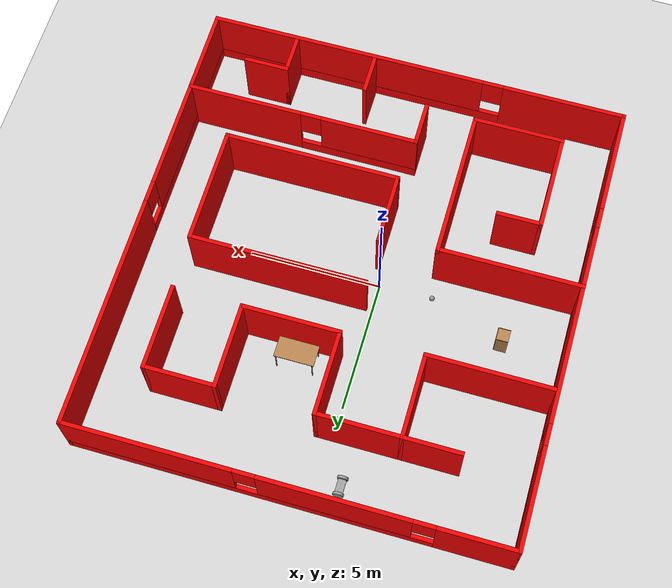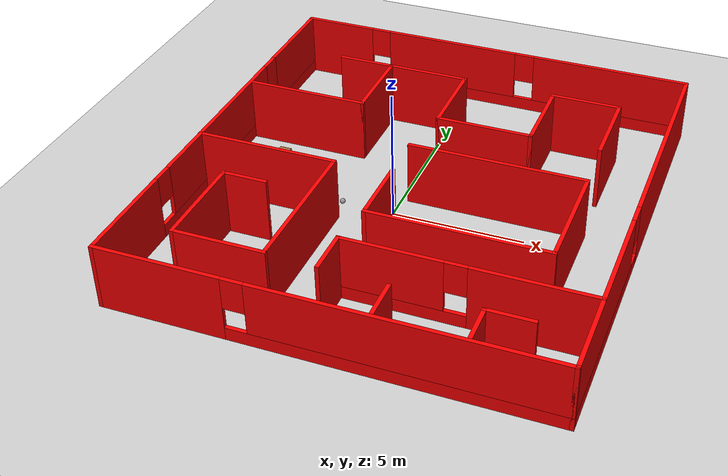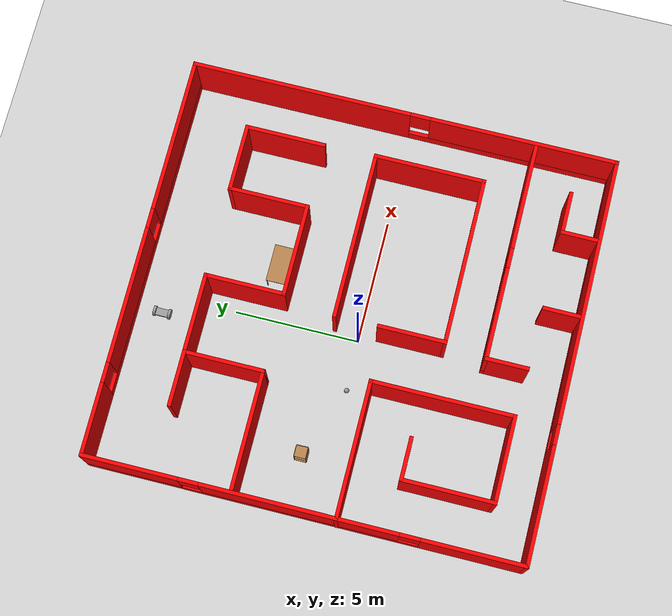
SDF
<sdf version="1.6">
 <world name="default">
  <plugin name="hello" filename="libwelcome.so"/>
  <light name="sun" type="directional">
   <pose>0 0 10 0 -0 0</pose>
   <diffuse>0.8 0.8 0.8 1</diffuse>
   <specular>0.2 0.2 0.2 1</specular>
   <attenuation>
    <range>1000</range>
    <constant>0.9</constant>
    <linear>0.01</linear>
    <quadratic>0.001</quadratic>
   </attenuation>
   <direction>-0.5 0.1 -0.9</direction>
  </light>
  <model name="ground_plane">
   <static>1</static>
   <link name="link">
    <collision name="collision">
     <geometry><plane><normal>0 0 1</normal><size>100 100</size></plane></geometry>
     <surface><friction><ode><mu>100</mu><mu2>50</mu2></ode></friction></surface>
    </collision>
    <visual name="visual">
     <cast_shadows>0</cast_shadows>
     <geometry><plane><normal>0 0 1</normal><size>100 100</size></plane></geometry>
     <material>
      <script><uri>file://media/materials/scripts/gazebo.material</uri><name>Gazebo/Grey</name></script>
     </material>
    </visual>
   </link>
  </model>
  <gravity>0 0 -9.8</gravity>
  <magnetic_field>6e-06 2.3e-05 -4.2e-05</magnetic_field>
  <atmosphere type="adiabatic"/>
  <physics name="default_physics" default="0" type="ode">
   <max_step_size>0.001</max_step_size>
   <real_time_factor>1</real_time_factor>
   <real_time_update_rate>1000</real_time_update_rate>
  </physics>
  <scene><ambient>0.4 0.4 0.4 1</ambient><background>0.7 0.7 0.7 1</background><shadows>1</shadows></scene>
  <spherical_coordinates>
   <surface_model>EARTH_WGS84</surface_model>
   <latitude_deg>0</latitude_deg>
   <longitude_deg>0</longitude_deg>
   <elevation>0</elevation>
   <heading_deg>0</heading_deg>
  </spherical_coordinates>
  <model name="Building">
   <pose>0.83335 0.33539 0 0 -0 0</pose>
   <link name="Wall_10">
    <pose>0.002796 -8.55 0 0 -0 0</pose>
    <visual name="Wall_10_Visual_0">
     <pose>-5.76226 0 1.25 0 -0 0</pose>
     <geometry><box><size>4.72547 0.15 2.5</size></box></geometry>
     <material>
      <script><uri>file://media/materials/scripts/gazebo.material</uri><name>Gazebo/Grey</name></script>
      <ambient>1 0 0 1</ambient>
     </material>
     <meta><layer>0</layer></meta>
    </visual>
    <collision name="Wall_10_Collision_0">
     <geometry><box><size>4.72547 0.15 2.5</size></box></geometry>
     <pose>-5.76226 0 1.25 0 -0 0</pose>
    </collision>
    <visual name="Wall_10_Visual_1">
     <pose>2.36274 0 0.25 0 -0 0</pose>
     <geometry><box><size>11.5245 0.15 0.5</size></box></geometry>
     <material>
      <script><uri>file://media/materials/scripts/gazebo.material</uri><name>Gazebo/Grey</name></script>
      <ambient>1 0 0 1</ambient>
     </material>
     <meta><layer>0</layer></meta>
    </visual>
    <collision name="Wall_10_Collision_1">
     <geometry><box><size>11.5245 0.15 0.5</size></box></geometry>
     <pose>2.36274 0 0.25 0 -0 0</pose>
    </collision>
    <visual name="Wall_10_Visual_2">
     <pose>2.76274 0 1.5 0 -0 0</pose>
     <geometry><box><size>10.7245 0.15 2</size></box></geometry>
     <material>
      <script><uri>file://media/materials/scripts/gazebo.material</uri><name>Gazebo/Grey</name></script>
      <ambient>1 0 0 1</ambient>
     </material>
     <meta><layer>0</layer></meta>
    </visual>
    <collision name="Wall_10_Collision_2">
     <geometry><box><size>10.7245 0.15 2</size></box></geometry>
     <pose>2.76274 0 1.5 0 -0 0</pose>
    </collision>
    <visual name="Wall_10_Visual_3">
     <pose>-2.99953 0 1.9 0 -0 0</pose>
     <geometry><box><size>0.8 0.15 1.2</size></box></geometry>
     <material>
      <script><uri>file://media/materials/scripts/gazebo.material</uri><name>Gazebo/Grey</name></script>
      <ambient>1 0 0 1</ambient>
     </material>
     <meta><layer>0</layer></meta>
    </visual>
    <collision name="Wall_10_Collision_3">
     <geometry><box><size>0.8 0.15 1.2</size></box></geometry>
     <pose>-2.99953 0 1.9 0 -0 0</pose>
    </collision>
   </link>
   <link name="Wall_13">
    <collision name="Wall_13_Collision">
     <geometry><box><size>5.5 0.15 2.5</size></box></geometry>
     <pose>0 0 1.25 0 -0 0</pose>
    </collision>
    <visual name="Wall_13_Visual">
     <pose>0 0 1.25 0 -0 0</pose>
     <geometry><box><size>5.5 0.15 2.5</size></box></geometry>
     <material>
      <script><uri>file://media/materials/scripts/gazebo.material</uri><name>Gazebo/Grey</name></script>
      <ambient>1 0 0 1</ambient>
     </material>
     <meta><layer>0</layer></meta>
    </visual>
    <pose>-5.3778 -1.28734 0 0 -0 0</pose>
   </link>
   <link name="Wall_14">
    <collision name="Wall_14_Collision">
     <geometry><box><size>5.75 0.15 2.5</size></box></geometry>
     <pose>0 0 1.25 0 -0 0</pose>
    </collision>
    <visual name="Wall_14_Visual">
     <pose>0 0 1.25 0 -0 0</pose>
     <geometry><box><size>5.75 0.15 2.5</size></box></geometry>
     <material>
      <script><uri>file://media/materials/scripts/gazebo.material</uri><name>Gazebo/Grey</name></script>
      <ambient>1 0 0 1</ambient>
     </material>
     <meta><layer>0</layer></meta>
    </visual>
    <pose>-2.7028 -4.08734 0 0 0 -1.5708</pose>
   </link>
   <link name="Wall_15">
    <collision name="Wall_15_Collision">
     <geometry><box><size>3.5 0.15 2.5</size></box></geometry>
     <pose>0 0 1.25 0 -0 0</pose>
    </collision>
    <visual name="Wall_15_Visual">
     <pose>0 0 1.25 0 -0 0</pose>
     <geometry><box><size>3.5 0.15 2.5</size></box></geometry>
     <material>
      <script><uri>file://media/materials/scripts/gazebo.material</uri><name>Gazebo/Grey</name></script>
      <ambient>1 0 0 1</ambient>
     </material>
     <meta><layer>0</layer></meta>
    </visual>
    <pose>-4.3778 -6.88734 0 0 -0 3.14159</pose>
   </link>
   <link name="Wall_16">
    <collision name="Wall_16_Collision">
     <geometry><box><size>3.75 0.15 2.5</size></box></geometry>
     <pose>0 0 1.25 0 -0 0</pose>
    </collision>
    <visual name="Wall_16_Visual">
     <pose>0 0 1.25 0 -0 0</pose>
     <geometry><box><size>3.75 0.15 2.5</size></box></geometry>
     <material>
      <script><uri>file://media/materials/scripts/gazebo.material</uri><name>Gazebo/Grey</name></script>
      <ambient>1 0 0 1</ambient>
     </material>
     <meta><layer>0</layer></meta>
    </visual>
    <pose>-6.0528 -5.08734 0 0 -0 1.5708</pose>
   </link>
   <link name="Wall_17">
    <collision name="Wall_17_Collision">
     <geometry><box><size>1.75 0.15 2.5</size></box></geometry>
     <pose>0 0 1.25 0 -0 0</pose>
    </collision>
    <visual name="Wall_17_Visual">
     <pose>0 0 1.25 0 -0 0</pose>
     <geometry><box><size>1.75 0.15 2.5</size></box></geometry>
     <material>
      <script><uri>file://media/materials/scripts/gazebo.material</uri><name>Gazebo/Grey</name></script>
      <ambient>1 0 0 1</ambient>
     </material>
     <meta><layer>0</layer></meta>
    </visual>
    <pose>-5.2528 -3.28734 0 0 -0 0</pose>
   </link>
   <link name="Wall_19">
    <collision name="Wall_19_Collision">
     <geometry><box><size>4.75 0.15 2.5</size></box></geometry>
     <pose>0 0 1.25 0 -0 0</pose>
    </collision>
    <visual name="Wall_19_Visual">
     <pose>0 0 1.25 0 -0 0</pose>
     <geometry><box><size>4.75 0.15 2.5</size></box></geometry>
     <material>
      <script><uri>file://media/materials/scripts/gazebo.material</uri><name>Gazebo/Grey</name></script>
      <ambient>1 0 0 1</ambient>
     </material>
     <meta><layer>0</layer></meta>
    </visual>
    <pose>-5.61322 2.76024 0 0 -0 0</pose>
   </link>
   <link name="Wall_20">
    <collision name="Wall_20_Collision">
     <geometry><box><size>3.25 0.15 2.5</size></box></geometry>
     <pose>0 0 1.25 0 -0 0</pose>
    </collision>
    <visual name="Wall_20_Visual">
     <pose>0 0 1.25 0 -0 0</pose>
     <geometry><box><size>3.25 0.15 2.5</size></box></geometry>
     <material>
      <script><uri>file://media/materials/scripts/gazebo.material</uri><name>Gazebo/Grey</name></script>
      <ambient>1 0 0 1</ambient>
     </material>
     <meta><layer>0</layer></meta>
    </visual>
    <pose>-3.31323 4.31024 0 0 -0 1.5708</pose>
   </link>
   <link name="Wall_21">
    <collision name="Wall_21_Collision">
     <geometry><box><size>3.25 0.15 2.5</size></box></geometry>
     <pose>0 0 1.25 0 -0 0</pose>
    </collision>
    <visual name="Wall_21_Visual">
     <pose>0 0 1.25 0 -0 0</pose>
     <geometry><box><size>3.25 0.15 2.5</size></box></geometry>
     <material>
      <script><uri>file://media/materials/scripts/gazebo.material</uri><name>Gazebo/Grey</name></script>
      <ambient>1 0 0 1</ambient>
     </material>
     <meta><layer>0</layer></meta>
    </visual>
    <pose>-1.76323 5.86024 0 0 -0 0</pose>
   </link>
   <link name="Wall_24">
    <collision name="Wall_24_Collision">
     <geometry><box><size>2.25 0.15 2.5</size></box></geometry>
     <pose>0 0 1.25 0 -0 0</pose>
    </collision>
    <visual name="Wall_24_Visual">
     <pose>0 0 1.25 0 -0 0</pose>
     <geometry><box><size>2.25 0.15 2.5</size></box></geometry>
     <material>
      <script><uri>file://media/materials/scripts/gazebo.material</uri><name>Gazebo/Grey</name></script>
      <ambient>1 0 0 1</ambient>
     </material>
     <meta><layer>0</layer></meta>
    </visual>
    <pose>-4.36322 5.86024 0 0 -0 3.14159</pose>
   </link>
   <link name="Wall_26">
    <collision name="Wall_26_Collision">
     <geometry><box><size>3.25 0.15 2.5</size></box></geometry>
     <pose>0 0 1.25 0 -0 0</pose>
    </collision>
    <visual name="Wall_26_Visual">
     <pose>0 0 1.25 0 -0 0</pose>
     <geometry><box><size>3.25 0.15 2.5</size></box></geometry>
     <material>
      <script><uri>file://media/materials/scripts/gazebo.material</uri><name>Gazebo/Grey</name></script>
      <ambient>1 0 0 1</ambient>
     </material>
     <meta><layer>0</layer></meta>
    </visual>
    <pose>-0.213225 4.31024 0 0 0 -1.5708</pose>
   </link>
   <link name="Wall_27">
    <collision name="Wall_27_Collision">
     <geometry><box><size>3.75 0.15 2.5</size></box></geometry>
     <pose>0 0 1.25 0 -0 0</pose>
    </collision>
    <visual name="Wall_27_Visual">
     <pose>0 0 1.25 0 -0 0</pose>
     <geometry><box><size>3.75 0.15 2.5</size></box></geometry>
     <material>
      <script><uri>file://media/materials/scripts/gazebo.material</uri><name>Gazebo/Grey</name></script>
      <ambient>1 0 0 1</ambient>
     </material>
     <meta><layer>0</layer></meta>
    </visual>
    <pose>1.58678 2.76024 0 0 -0 0</pose>
   </link>
   <link name="Wall_28">
    <collision name="Wall_28_Collision">
     <geometry><box><size>3.25 0.15 2.5</size></box></geometry>
     <pose>0 0 1.25 0 -0 0</pose>
    </collision>
    <visual name="Wall_28_Visual">
     <pose>0 0 1.25 0 -0 0</pose>
     <geometry><box><size>3.25 0.15 2.5</size></box></geometry>
     <material>
      <script><uri>file://media/materials/scripts/gazebo.material</uri><name>Gazebo/Grey</name></script>
      <ambient>1 0 0 1</ambient>
     </material>
     <meta><layer>0</layer></meta>
    </visual>
    <pose>3.38678 4.31024 0 0 -0 1.5708</pose>
   </link>
   <link name="Wall_29">
    <collision name="Wall_29_Collision">
     <geometry><box><size>2.75 0.15 2.5</size></box></geometry>
     <pose>0 0 1.25 0 -0 0</pose>
    </collision>
    <visual name="Wall_29_Visual">
     <pose>0 0 1.25 0 -0 0</pose>
     <geometry><box><size>2.75 0.15 2.5</size></box></geometry>
     <material>
      <script><uri>file://media/materials/scripts/gazebo.material</uri><name>Gazebo/Grey</name></script>
      <ambient>1 0 0 1</ambient>
     </material>
     <meta><layer>0</layer></meta>
    </visual>
    <pose>4.68677 5.86024 0 0 -0 0</pose>
   </link>
   <link name="Wall_30">
    <collision name="Wall_30_Collision">
     <geometry><box><size>3.25 0.15 2.5</size></box></geometry>
     <pose>0 0 1.25 0 -0 0</pose>
    </collision>
    <visual name="Wall_30_Visual">
     <pose>0 0 1.25 0 -0 0</pose>
     <geometry><box><size>3.25 0.15 2.5</size></box></geometry>
     <material>
      <script><uri>file://media/materials/scripts/gazebo.material</uri><name>Gazebo/Grey</name></script>
      <ambient>1 0 0 1</ambient>
     </material>
     <meta><layer>0</layer></meta>
    </visual>
    <pose>5.98677 4.31024 0 0 0 -1.5708</pose>
   </link>
   <link name="Wall_32">
    <collision name="Wall_32_Collision">
     <geometry><box><size>6.75 0.15 2.5</size></box></geometry>
     <pose>0 0 1.25 0 -0 0</pose>
    </collision>
    <visual name="Wall_32_Visual">
     <pose>0 0 1.25 0 -0 0</pose>
     <geometry><box><size>6.75 0.15 2.5</size></box></geometry>
     <material>
      <script><uri>file://media/materials/scripts/gazebo.material</uri><name>Gazebo/Grey</name></script>
      <ambient>1 0 0 1</ambient>
     </material>
     <meta><layer>0</layer></meta>
    </visual>
    <pose>2.74596 0.667311 0 0 -0 0</pose>
   </link>
   <link name="Wall_33">
    <collision name="Wall_33_Collision">
     <geometry><box><size>4.5 0.15 2.5</size></box></geometry>
     <pose>0 0 1.25 0 -0 0</pose>
    </collision>
    <visual name="Wall_33_Visual">
     <pose>0 0 1.25 0 -0 0</pose>
     <geometry><box><size>4.5 0.15 2.5</size></box></geometry>
     <material>
      <script><uri>file://media/materials/scripts/gazebo.material</uri><name>Gazebo/Grey</name></script>
      <ambient>1 0 0 1</ambient>
     </material>
     <meta><layer>0</layer></meta>
    </visual>
    <pose>6.04596 -1.50769 0 0 0 -1.5708</pose>
   </link>
   <link name="Wall_34">
    <collision name="Wall_34_Collision">
     <geometry><box><size>6.75 0.15 2.5</size></box></geometry>
     <pose>0 0 1.25 0 -0 0</pose>
    </collision>
    <visual name="Wall_34_Visual">
     <pose>0 0 1.25 0 -0 0</pose>
     <geometry><box><size>6.75 0.15 2.5</size></box></geometry>
     <material>
      <script><uri>file://media/materials/scripts/gazebo.material</uri><name>Gazebo/Grey</name></script>
      <ambient>1 0 0 1</ambient>
     </material>
     <meta><layer>0</layer></meta>
    </visual>
    <pose>2.74596 -3.68269 0 0 -0 3.14159</pose>
   </link>
   <link name="Wall_35">
    <collision name="Wall_35_Collision">
     <geometry><box><size>2.75 0.15 2.5</size></box></geometry>
     <pose>0 0 1.25 0 -0 0</pose>
    </collision>
    <visual name="Wall_35_Visual">
     <pose>0 0 1.25 0 -0 0</pose>
     <geometry><box><size>2.75 0.15 2.5</size></box></geometry>
     <material>
      <script><uri>file://media/materials/scripts/gazebo.material</uri><name>Gazebo/Grey</name></script>
      <ambient>1 0 0 1</ambient>
     </material>
     <meta><layer>0</layer></meta>
    </visual>
    <pose>-0.554043 -2.38269 0 0 -0 1.5708</pose>
   </link>
   <link name="Wall_40">
    <pose>3.6255 -5.33977 0 0 -0 3.14159</pose>
    <visual name="Wall_40_Visual_0">
     <pose>-2.27925 0 1.25 0 -0 0</pose>
     <geometry><box><size>4.4415 0.15 2.5</size></box></geometry>
     <material>
      <script><uri>file://media/materials/scripts/gazebo.material</uri><name>Gazebo/Grey</name></script>
      <ambient>1 0 0 1</ambient>
     </material>
     <meta><layer>0</layer></meta>
    </visual>
    <collision name="Wall_40_Collision_0">
     <geometry><box><size>4.4415 0.15 2.5</size></box></geometry>
     <pose>-2.27925 0 1.25 0 -0 0</pose>
    </collision>
    <visual name="Wall_40_Visual_1">
     <pose>2.22075 0 0.25 0 -0 0</pose>
     <geometry><box><size>4.5585 0.15 0.5</size></box></geometry>
     <material>
      <script><uri>file://media/materials/scripts/gazebo.material</uri><name>Gazebo/Grey</name></script>
      <ambient>1 0 0 1</ambient>
     </material>
     <meta><layer>0</layer></meta>
    </visual>
    <collision name="Wall_40_Collision_1">
     <geometry><box><size>4.5585 0.15 0.5</size></box></geometry>
     <pose>2.22075 0 0.25 0 -0 0</pose>
    </collision>
    <visual name="Wall_40_Visual_2">
     <pose>2.62075 0 1.5 0 -0 0</pose>
     <geometry><box><size>3.7585 0.15 2</size></box></geometry>
     <material>
      <script><uri>file://media/materials/scripts/gazebo.material</uri><name>Gazebo/Grey</name></script>
      <ambient>1 0 0 1</ambient>
     </material>
     <meta><layer>0</layer></meta>
    </visual>
    <collision name="Wall_40_Collision_2">
     <geometry><box><size>3.7585 0.15 2</size></box></geometry>
     <pose>2.62075 0 1.5 0 -0 0</pose>
    </collision>
    <visual name="Wall_40_Visual_3">
     <pose>0.341502 0 1.9 0 -0 0</pose>
     <geometry><box><size>0.8 0.15 1.2</size></box></geometry>
     <material>
      <script><uri>file://media/materials/scripts/gazebo.material</uri><name>Gazebo/Grey</name></script>
      <ambient>1 0 0 1</ambient>
     </material>
     <meta><layer>0</layer></meta>
    </visual>
    <collision name="Wall_40_Collision_3">
     <geometry><box><size>0.8 0.15 1.2</size></box></geometry>
     <pose>0.341502 0 1.9 0 -0 0</pose>
    </collision>
   </link>
   <link name="Wall_42">
    <collision name="Wall_42_Collision">
     <geometry><box><size>1.75 0.15 2.5</size></box></geometry>
     <pose>0 0 1.25 0 -0 0</pose>
    </collision>
    <visual name="Wall_42_Visual">
     <pose>0 0 1.25 0 -0 0</pose>
     <geometry><box><size>1.75 0.15 2.5</size></box></geometry>
     <material>
      <script><uri>file://media/materials/scripts/gazebo.material</uri><name>Gazebo/Grey</name></script>
      <ambient>1 0 0 1</ambient>
     </material>
     <meta><layer>0</layer></meta>
    </visual>
    <pose>-0.799499 -6.13977 0 0 0 -1.5708</pose>
   </link>
   <link name="Wall_45">
    <collision name="Wall_45_Collision">
     <geometry><box><size>1.5 0.15 2.5</size></box></geometry>
     <pose>0 0 1.25 0 -0 0</pose>
    </collision>
    <visual name="Wall_45_Visual">
     <pose>0 0 1.25 0 -0 0</pose>
     <geometry><box><size>1.5 0.15 2.5</size></box></geometry>
     <material>
      <script><uri>file://media/materials/scripts/gazebo.material</uri><name>Gazebo/Grey</name></script>
      <ambient>1 0 0 1</ambient>
     </material>
     <meta><layer>0</layer></meta>
    </visual>
    <pose>1.65714 -7.72379 0 0 -0 1.5708</pose>
   </link>
   <link name="Wall_47">
    <collision name="Wall_47_Collision">
     <geometry><box><size>1.5 0.15 2.5</size></box></geometry>
     <pose>0 0 1.25 0 -0 0</pose>
    </collision>
    <visual name="Wall_47_Visual">
     <pose>0 0 1.25 0 -0 0</pose>
     <geometry><box><size>1.5 0.15 2.5</size></box></geometry>
     <material>
      <script><uri>file://media/materials/scripts/gazebo.material</uri><name>Gazebo/Grey</name></script>
      <ambient>1 0 0 1</ambient>
     </material>
     <meta><layer>0</layer></meta>
    </visual>
    <pose>4.77735 -7.75438 0 0 -0 1.5708</pose>
   </link>
   <link name="Wall_48">
    <collision name="Wall_48_Collision">
     <geometry><box><size>1.75 0.15 2.5</size></box></geometry>
     <pose>0 0 1.25 0 -0 0</pose>
    </collision>
    <visual name="Wall_48_Visual">
     <pose>0 0 1.25 0 -0 0</pose>
     <geometry><box><size>1.75 0.15 2.5</size></box></geometry>
     <material>
      <script><uri>file://media/materials/scripts/gazebo.material</uri><name>Gazebo/Grey</name></script>
      <ambient>1 0 0 1</ambient>
     </material>
     <meta><layer>0</layer></meta>
    </visual>
    <pose>5.57735 -7.07938 0 0 -0 0</pose>
   </link>
   <link name="Wall_5">
    <pose>-8.0472 0 0 0 -0 1.5708</pose>
    <visual name="Wall_5_Visual_0">
     <pose>-6.56208 0 1.25 0 -0 0</pose>
     <geometry><box><size>4.12585 0.15 2.5</size></box></geometry>
     <material>
      <script><uri>file://media/materials/scripts/gazebo.material</uri><name>Gazebo/Grey</name></script>
      <ambient>1 0 0 1</ambient>
     </material>
     <meta><layer>0</layer></meta>
    </visual>
    <collision name="Wall_5_Collision_0">
     <geometry><box><size>4.12585 0.15 2.5</size></box></geometry>
     <pose>-6.56208 0 1.25 0 -0 0</pose>
    </collision>
    <visual name="Wall_5_Visual_1">
     <pose>2.06292 0 0.25 0 -0 0</pose>
     <geometry><box><size>13.1242 0.15 0.5</size></box></geometry>
     <material>
      <script><uri>file://media/materials/scripts/gazebo.material</uri><name>Gazebo/Grey</name></script>
      <ambient>1 0 0 1</ambient>
     </material>
     <meta><layer>0</layer></meta>
    </visual>
    <collision name="Wall_5_Collision_1">
     <geometry><box><size>13.1242 0.15 0.5</size></box></geometry>
     <pose>2.06292 0 0.25 0 -0 0</pose>
    </collision>
    <visual name="Wall_5_Visual_2">
     <pose>0.157784 0 1.5 0 -0 0</pose>
     <geometry><box><size>7.71388 0.15 2</size></box></geometry>
     <material>
      <script><uri>file://media/materials/scripts/gazebo.material</uri><name>Gazebo/Grey</name></script>
      <ambient>1 0 0 1</ambient>
     </material>
     <meta><layer>0</layer></meta>
    </visual>
    <collision name="Wall_5_Collision_2">
     <geometry><box><size>7.71388 0.15 2</size></box></geometry>
     <pose>0.157784 0 1.5 0 -0 0</pose>
    </collision>
    <visual name="Wall_5_Visual_3">
     <pose>6.71986 0 1.5 0 -0 0</pose>
     <geometry><box><size>3.81028 0.15 2</size></box></geometry>
     <material>
      <script><uri>file://media/materials/scripts/gazebo.material</uri><name>Gazebo/Grey</name></script>
      <ambient>1 0 0 1</ambient>
     </material>
     <meta><layer>0</layer></meta>
    </visual>
    <collision name="Wall_5_Collision_3">
     <geometry><box><size>3.81028 0.15 2</size></box></geometry>
     <pose>6.71986 0 1.5 0 -0 0</pose>
    </collision>
    <visual name="Wall_5_Visual_4">
     <pose>-4.09915 0 1.9 0 -0 0</pose>
     <geometry><box><size>0.8 0.15 1.2</size></box></geometry>
     <material>
      <script><uri>file://media/materials/scripts/gazebo.material</uri><name>Gazebo/Grey</name></script>
      <ambient>1 0 0 1</ambient>
     </material>
     <meta><layer>0</layer></meta>
    </visual>
    <collision name="Wall_5_Collision_4">
     <geometry><box><size>0.8 0.15 1.2</size></box></geometry>
     <pose>-4.09915 0 1.9 0 -0 0</pose>
    </collision>
    <visual name="Wall_5_Visual_5">
     <pose>4.41472 0 1.9 0 -0 0</pose>
     <geometry><box><size>0.8 0.15 1.2</size></box></geometry>
     <material>
      <script><uri>file://media/materials/scripts/gazebo.material</uri><name>Gazebo/Grey</name></script>
      <ambient>1 0 0 1</ambient>
     </material>
     <meta><layer>0</layer></meta>
    </visual>
    <collision name="Wall_5_Collision_5">
     <geometry><box><size>0.8 0.15 1.2</size></box></geometry>
     <pose>4.41472 0 1.9 0 -0 0</pose>
    </collision>
   </link>
   <link name="Wall_7">
    <pose>0.002796 8.55 0 0 -0 0</pose>
    <visual name="Wall_7_Visual_0">
     <pose>-6.66948 0 1.25 0 -0 0</pose>
     <geometry><box><size>2.91104 0.15 2.5</size></box></geometry>
     <material>
      <script><uri>file://media/materials/scripts/gazebo.material</uri><name>Gazebo/Grey</name></script>
      <ambient>1 0 0 1</ambient>
     </material>
     <meta><layer>0</layer></meta>
    </visual>
    <collision name="Wall_7_Collision_0">
     <geometry><box><size>2.91104 0.15 2.5</size></box></geometry>
     <pose>-6.66948 0 1.25 0 -0 0</pose>
    </collision>
    <visual name="Wall_7_Visual_1">
     <pose>1.45552 0 0.25 0 -0 0</pose>
     <geometry><box><size>13.339 0.15 0.5</size></box></geometry>
     <material>
      <script><uri>file://media/materials/scripts/gazebo.material</uri><name>Gazebo/Grey</name></script>
      <ambient>1 0 0 1</ambient>
     </material>
     <meta><layer>0</layer></meta>
    </visual>
    <collision name="Wall_7_Collision_1">
     <geometry><box><size>13.339 0.15 0.5</size></box></geometry>
     <pose>1.45552 0 0.25 0 -0 0</pose>
    </collision>
    <visual name="Wall_7_Visual_2">
     <pose>-1.67359 0 1.5 0 -0 0</pose>
     <geometry><box><size>5.48073 0.15 2</size></box></geometry>
     <material>
      <script><uri>file://media/materials/scripts/gazebo.material</uri><name>Gazebo/Grey</name></script>
      <ambient>1 0 0 1</ambient>
     </material>
     <meta><layer>0</layer></meta>
    </visual>
    <collision name="Wall_7_Collision_2">
     <geometry><box><size>5.48073 0.15 2</size></box></geometry>
     <pose>-1.67359 0 1.5 0 -0 0</pose>
    </collision>
    <visual name="Wall_7_Visual_3">
     <pose>4.99589 0 1.5 0 -0 0</pose>
     <geometry><box><size>6.25823 0.15 2</size></box></geometry>
     <material>
      <script><uri>file://media/materials/scripts/gazebo.material</uri><name>Gazebo/Grey</name></script>
      <ambient>1 0 0 1</ambient>
     </material>
     <meta><layer>0</layer></meta>
    </visual>
    <collision name="Wall_7_Collision_3">
     <geometry><box><size>6.25823 0.15 2</size></box></geometry>
     <pose>4.99589 0 1.5 0 -0 0</pose>
    </collision>
    <visual name="Wall_7_Visual_4">
     <pose>-4.81396 0 1.9 0 -0 0</pose>
     <geometry><box><size>0.8 0.15 1.2</size></box></geometry>
     <material>
      <script><uri>file://media/materials/scripts/gazebo.material</uri><name>Gazebo/Grey</name></script>
      <ambient>1 0 0 1</ambient>
     </material>
     <meta><layer>0</layer></meta>
    </visual>
    <collision name="Wall_7_Collision_4">
     <geometry><box><size>0.8 0.15 1.2</size></box></geometry>
     <pose>-4.81396 0 1.9 0 -0 0</pose>
    </collision>
    <visual name="Wall_7_Visual_5">
     <pose>1.46677 0 1.9 0 -0 0</pose>
     <geometry><box><size>0.8 0.15 1.2</size></box></geometry>
     <material>
      <script><uri>file://media/materials/scripts/gazebo.material</uri><name>Gazebo/Grey</name></script>
      <ambient>1 0 0 1</ambient>
     </material>
     <meta><layer>0</layer></meta>
    </visual>
    <collision name="Wall_7_Collision_5">
     <geometry><box><size>0.8 0.15 1.2</size></box></geometry>
     <pose>1.46677 0 1.9 0 -0 0</pose>
    </collision>
   </link>
   <link name="Wall_8">
    <pose>8.0528 0 0 0 0 -1.5708</pose>
    <visual name="Wall_8_Visual_0">
     <pose>-4.18431 0 1.25 0 -0 0</pose>
     <geometry><box><size>8.88138 0.15 2.5</size></box></geometry>
     <material>
      <script><uri>file://media/materials/scripts/gazebo.material</uri><name>Gazebo/Grey</name></script>
      <ambient>1 0 0 1</ambient>
     </material>
     <meta><layer>0</layer></meta>
    </visual>
    <collision name="Wall_8_Collision_0">
     <geometry><box><size>8.88138 0.15 2.5</size></box></geometry>
     <pose>-4.18431 0 1.25 0 -0 0</pose>
    </collision>
    <visual name="Wall_8_Visual_1">
     <pose>4.44069 0 0.25 0 -0 0</pose>
     <geometry><box><size>8.36862 0.15 0.5</size></box></geometry>
     <material>
      <script><uri>file://media/materials/scripts/gazebo.material</uri><name>Gazebo/Grey</name></script>
      <ambient>1 0 0 1</ambient>
     </material>
     <meta><layer>0</layer></meta>
    </visual>
    <collision name="Wall_8_Collision_1">
     <geometry><box><size>8.36862 0.15 0.5</size></box></geometry>
     <pose>4.44069 0 0.25 0 -0 0</pose>
    </collision>
    <visual name="Wall_8_Visual_2">
     <pose>4.84069 0 1.5 0 -0 0</pose>
     <geometry><box><size>7.56862 0.15 2</size></box></geometry>
     <material>
      <script><uri>file://media/materials/scripts/gazebo.material</uri><name>Gazebo/Grey</name></script>
      <ambient>1 0 0 1</ambient>
     </material>
     <meta><layer>0</layer></meta>
    </visual>
    <collision name="Wall_8_Collision_2">
     <geometry><box><size>7.56862 0.15 2</size></box></geometry>
     <pose>4.84069 0 1.5 0 -0 0</pose>
    </collision>
    <visual name="Wall_8_Visual_3">
     <pose>0.656384 0 1.9 0 -0 0</pose>
     <geometry><box><size>0.8 0.15 1.2</size></box></geometry>
     <material>
      <script><uri>file://media/materials/scripts/gazebo.material</uri><name>Gazebo/Grey</name></script>
      <ambient>1 0 0 1</ambient>
     </material>
     <meta><layer>0</layer></meta>
    </visual>
    <collision name="Wall_8_Collision_3">
     <geometry><box><size>0.8 0.15 1.2</size></box></geometry>
     <pose>0.656384 0 1.9 0 -0 0</pose>
    </collision>
   </link>
   <static>1</static>
  </model>
  <model name="myrobot_0">
   <link name="link_0">
    <pose>0 0 -5.7e-05 0 -0 0</pose>
    <inertial>
     <mass>1</mass>
     <inertia>
      <ixx>0.166667</ixx>
      <ixy>0</ixy>
      <ixz>0</ixz>
      <iyy>0.166667</iyy>
      <iyz>0</iyz>
      <izz>0.166667</izz>
     </inertia>
    </inertial>
    <visual name="visual">
     <geometry><box><size>0.3 0.5 0.1</size></box></geometry>
     <material>
      <lighting>1</lighting>
      <script><uri>file://media/materials/scripts/gazebo.material</uri><name>Gazebo/Grey</name></script>
      <ambient>0.3 0.3 0.3 1</ambient>
      <diffuse>0.7 0.7 0.7 1</diffuse>
      <specular>0.01 0.01 0.01 1</specular>
      <emissive>0 0 0 1</emissive>
      <shader type="vertex"><normal_map>__default__</normal_map></shader>
     </material>
    </visual>
    <collision name="collision">
     <geometry><box><size>0.3 0.5 0.1</size></box></geometry>
     <surface>
      <friction>
       <ode><mu>1</mu><mu2>1</mu2><fdir1>0 0 0</fdir1><slip1>0</slip1><slip2>0</slip2></ode>
       <torsional>
        <coefficient>1</coefficient>
        <patch_radius>0</patch_radius>
        <surface_radius>0</surface_radius>
        <use_patch_radius>1</use_patch_radius>
        <ode><slip>0</slip></ode>
       </torsional>
      </friction>
      <bounce><restitution_coefficient>0</restitution_coefficient><threshold>1e+06</threshold></bounce>
      <contact>
       <collide_without_contact>0</collide_without_contact>
       <collide_without_contact_bitmask>1</collide_without_contact_bitmask>
       <collide_bitmask>1</collide_bitmask>
       <ode>
        <soft_cfm>0</soft_cfm>
        <soft_erp>0.2</soft_erp>
        <kp>1e+13</kp>
        <kd>1</kd>
        <max_vel>0.01</max_vel>
        <min_depth>0</min_depth>
       </ode>
       <bullet>
        <split_impulse>1</split_impulse>
        <split_impulse_penetration_threshold>-0.01</split_impulse_penetration_threshold>
        <soft_cfm>0</soft_cfm>
        <soft_erp>0.2</soft_erp>
        <kp>1e+13</kp>
        <kd>1</kd>
       </bullet>
      </contact>
     </surface>
    </collision>
   </link>
   <link name="link_1">
    <pose>0 -0.300019 2.8e-05 1.5707 -0 0</pose>
    <inertial>
     <mass>1</mass>
     <inertia><ixx>0.145833</ixx><ixy>0</ixy><ixz>0</ixz><iyy>0.145833</iyy><iyz>0</iyz><izz>0.125</izz></inertia>
    </inertial>
    <visual name="visual">
     <geometry><cylinder><radius>0.2</radius><length>0.1</length></cylinder></geometry>
     <material>
      <lighting>1</lighting>
      <script><uri>file://media/materials/scripts/gazebo.material</uri><name>Gazebo/Grey</name></script>
      <ambient>0.3 0.3 0.3 1</ambient>
      <diffuse>0.7 0.7 0.7 1</diffuse>
      <specular>0.01 0.01 0.01 1</specular>
      <emissive>0 0 0 1</emissive>
      <shader type="vertex"><normal_map>__default__</normal_map></shader>
     </material>
    </visual>
    <collision name="collision">
     <geometry><cylinder><radius>0.2</radius><length>0.1</length></cylinder></geometry>
     <surface>
      <friction>
       <ode><mu>1</mu><mu2>1</mu2><fdir1>0 0 0</fdir1><slip1>0</slip1><slip2>0</slip2></ode>
       <torsional>
        <coefficient>1</coefficient>
        <patch_radius>0</patch_radius>
        <surface_radius>0</surface_radius>
        <use_patch_radius>1</use_patch_radius>
        <ode><slip>0</slip></ode>
       </torsional>
      </friction>
      <bounce><restitution_coefficient>0</restitution_coefficient><threshold>1e+06</threshold></bounce>
      <contact>
       <collide_without_contact>0</collide_without_contact>
       <collide_without_contact_bitmask>1</collide_without_contact_bitmask>
       <collide_bitmask>1</collide_bitmask>
       <ode>
        <soft_cfm>0</soft_cfm>
        <soft_erp>0.2</soft_erp>
        <kp>1e+13</kp>
        <kd>1</kd>
        <max_vel>0.01</max_vel>
        <min_depth>0</min_depth>
       </ode>
       <bullet>
        <split_impulse>1</split_impulse>
        <split_impulse_penetration_threshold>-0.01</split_impulse_penetration_threshold>
        <soft_cfm>0</soft_cfm>
        <soft_erp>0.2</soft_erp>
        <kp>1e+13</kp>
        <kd>1</kd>
       </bullet>
      </contact>
     </surface>
    </collision>
   </link>
   <link name="link_1_clone">
    <pose>0 0.300019 2.8e-05 1.5707 -0 0</pose>
    <inertial>
     <mass>1</mass>
     <inertia><ixx>0.145833</ixx><ixy>0</ixy><ixz>0</ixz><iyy>0.145833</iyy><iyz>0</iyz><izz>0.125</izz></inertia>
    </inertial>
    <visual name="visual">
     <geometry><cylinder><radius>0.2</radius><length>0.1</length></cylinder></geometry>
     <material>
      <lighting>1</lighting>
      <script><uri>file://media/materials/scripts/gazebo.material</uri><name>Gazebo/Grey</name></script>
      <ambient>0.3 0.3 0.3 1</ambient>
      <diffuse>0.7 0.7 0.7 1</diffuse>
      <specular>0.01 0.01 0.01 1</specular>
      <emissive>0 0 0 1</emissive>
      <shader type="vertex"><normal_map>__default__</normal_map></shader>
     </material>
    </visual>
    <collision name="collision">
     <geometry><cylinder><radius>0.2</radius><length>0.1</length></cylinder></geometry>
     <surface>
      <friction>
       <ode><mu>1</mu><mu2>1</mu2><fdir1>0 0 0</fdir1><slip1>0</slip1><slip2>0</slip2></ode>
       <torsional>
        <coefficient>1</coefficient>
        <patch_radius>0</patch_radius>
        <surface_radius>0</surface_radius>
        <use_patch_radius>1</use_patch_radius>
        <ode><slip>0</slip></ode>
       </torsional>
      </friction>
      <bounce><restitution_coefficient>0</restitution_coefficient><threshold>1e+06</threshold></bounce>
      <contact>
       <collide_without_contact>0</collide_without_contact>
       <collide_without_contact_bitmask>1</collide_without_contact_bitmask>
       <collide_bitmask>1</collide_bitmask>
       <ode>
        <soft_cfm>0</soft_cfm>
        <soft_erp>0.2</soft_erp>
        <kp>1e+13</kp>
        <kd>1</kd>
        <max_vel>0.01</max_vel>
        <min_depth>0</min_depth>
       </ode>
       <bullet>
        <split_impulse>1</split_impulse>
        <split_impulse_penetration_threshold>-0.01</split_impulse_penetration_threshold>
        <soft_cfm>0</soft_cfm>
        <soft_erp>0.2</soft_erp>
        <kp>1e+13</kp>
        <kd>1</kd>
       </bullet>
      </contact>
     </surface>
    </collision>
   </link>
   <joint name="link_0_JOINT_0" type="revolute">
    <parent>link_0</parent>
    <child>link_1</child>
    <axis>
     <xyz>0 0 1</xyz>
     <use_parent_model_frame>0</use_parent_model_frame>
     <limit>
      <lower>-1.79769e+308</lower>
      <upper>1.79769e+308</upper>
      <effort>-1</effort>
      <velocity>-1</velocity>
     </limit>
     <dynamics>
      <spring_reference>0</spring_reference>
      <spring_stiffness>0</spring_stiffness>
      <damping>0</damping>
      <friction>0</friction>
     </dynamics>
    </axis>
    <physics>
     <ode><limit><cfm>0</cfm><erp>0.2</erp></limit><suspension><cfm>0</cfm><erp>0.2</erp></suspension></ode>
    </physics>
   </joint>
   <joint name="link_0_JOINT_1" type="revolute">
    <parent>link_0</parent>
    <child>link_1_clone</child>
    <axis>
     <xyz>0 0 1</xyz>
     <use_parent_model_frame>0</use_parent_model_frame>
     <limit>
      <lower>-1.79769e+308</lower>
      <upper>1.79769e+308</upper>
      <effort>-1</effort>
      <velocity>-1</velocity>
     </limit>
     <dynamics>
      <spring_reference>0</spring_reference>
      <spring_stiffness>0</spring_stiffness>
      <damping>0</damping>
      <friction>0</friction>
     </dynamics>
    </axis>
    <physics>
     <ode><limit><cfm>0</cfm><erp>0.2</erp></limit><suspension><cfm>0</cfm><erp>0.2</erp></suspension></ode>
    </physics>
   </joint>
   <static>0</static>
   <pose>-0.750754 7.82067 0.199975 5e-06 -2.3e-05 -0.001419</pose>
  </model>
  <model name="table">
   <static>1</static>
   <link name="link">
    <collision name="surface">
     <pose>0 0 1 0 -0 0</pose>
     <geometry><box><size>1.5 0.8 0.03</size></box></geometry>
     <surface><friction><ode><mu>0.6</mu><mu2>0.6</mu2></ode></friction></surface>
    </collision>
    <visual name="visual1">
     <pose>0 0 1 0 -0 0</pose>
     <geometry><box><size>1.5 0.8 0.03</size></box></geometry>
     <material>
      <script><uri>file://media/materials/scripts/gazebo.material</uri><name>Gazebo/Wood</name></script>
     </material>
    </visual>
    <collision name="front_left_leg">
     <pose>0.68 0.38 0.5 0 -0 0</pose>
     <geometry><cylinder><radius>0.02</radius><length>1</length></cylinder></geometry>
    </collision>
    <visual name="front_left_leg">
     <pose>0.68 0.38 0.5 0 -0 0</pose>
     <geometry><cylinder><radius>0.02</radius><length>1</length></cylinder></geometry>
     <material>
      <script><uri>file://media/materials/scripts/gazebo.material</uri><name>Gazebo/Grey</name></script>
     </material>
    </visual>
    <collision name="front_right_leg">
     <pose>0.68 -0.38 0.5 0 -0 0</pose>
     <geometry><cylinder><radius>0.02</radius><length>1</length></cylinder></geometry>
    </collision>
    <visual name="front_right_leg">
     <pose>0.68 -0.38 0.5 0 -0 0</pose>
     <geometry><cylinder><radius>0.02</radius><length>1</length></cylinder></geometry>
     <material>
      <script><uri>file://media/materials/scripts/gazebo.material</uri><name>Gazebo/Grey</name></script>
     </material>
    </visual>
    <collision name="back_right_leg">
     <pose>-0.68 -0.38 0.5 0 -0 0</pose>
     <geometry><cylinder><radius>0.02</radius><length>1</length></cylinder></geometry>
    </collision>
    <visual name="back_right_leg">
     <pose>-0.68 -0.38 0.5 0 -0 0</pose>
     <geometry><cylinder><radius>0.02</radius><length>1</length></cylinder></geometry>
     <material>
      <script><uri>file://media/materials/scripts/gazebo.material</uri><name>Gazebo/Grey</name></script>
     </material>
    </visual>
    <collision name="back_left_leg">
     <pose>-0.68 0.38 0.5 0 -0 0</pose>
     <geometry><cylinder><radius>0.02</radius><length>1</length></cylinder></geometry>
    </collision>
    <visual name="back_left_leg">
     <pose>-0.68 0.38 0.5 0 -0 0</pose>
     <geometry><cylinder><radius>0.02</radius><length>1</length></cylinder></geometry>
     <material>
      <script><uri>file://media/materials/scripts/gazebo.material</uri><name>Gazebo/Grey</name></script>
     </material>
    </visual>
   </link>
   <pose>2.08703 3.67857 0 0 -0 0</pose>
  </model>
  <model name="cabinet">
   <static>1</static>
   <link name="cabinet_bottom_plate">
    <inertial>
     <pose>0 0 -1 0 -0 0</pose>
     <inertia><ixx>2.05</ixx><ixy>0</ixy><ixz>0</ixz><iyy>2.05</iyy><iyz>0</iyz><izz>2.05</izz></inertia>
     <mass>25</mass>
    </inertial>
    <collision name="cabinet_bottom_plate_geom">
     <pose>0 0 0.01 0 -0 0</pose>
     <geometry><box><size>0.45 0.45 0.02</size></box></geometry>
    </collision>
    <visual name="cabinet_bottom_plate_geom_visual">
     <pose>0 0 0.01 0 -0 0</pose>
     <geometry><box><size>0.45 0.45 0.02</size></box></geometry>
     <material>
      <script><uri>file://media/materials/scripts/gazebo.material</uri><name>Gazebo/Wood</name></script>
     </material>
    </visual>
    <collision name="cabinet_bottom_plate_geom_cabinet_back_plate">
     <pose>0.235 0 0.51 0 -0 0</pose>
     <geometry><box><size>0.02 0.45 1.02</size></box></geometry>
    </collision>
    <visual name="cabinet_bottom_plate_geom_cabinet_back_plate_visual">
     <pose>0.235 0 0.51 0 -0 0</pose>
     <geometry><box><size>0.02 0.45 1.02</size></box></geometry>
     <material>
      <script><uri>file://media/materials/scripts/gazebo.material</uri><name>Gazebo/Wood</name></script>
     </material>
    </visual>
    <collision name="cabinet_bottom_plate_geom_cabinet_left_plate">
     <pose>0 0.235 0.51 0 -0 0</pose>
     <geometry><box><size>0.45 0.02 1.02</size></box></geometry>
    </collision>
    <visual name="cabinet_bottom_plate_geom_cabinet_left_plate_visual">
     <pose>0 0.235 0.51 0 -0 0</pose>
     <geometry><box><size>0.45 0.02 1.02</size></box></geometry>
     <material>
      <script><uri>file://media/materials/scripts/gazebo.material</uri><name>Gazebo/Wood</name></script>
     </material>
    </visual>
    <collision name="cabinet_bottom_plate_geom_cabinet_middle_plate">
     <pose>0 0 0.51 0 -0 0</pose>
     <geometry><box><size>0.45 0.45 0.02</size></box></geometry>
    </collision>
    <visual name="cabinet_bottom_plate_geom_cabinet_middle_plate_visual">
     <pose>0 0 0.51 0 -0 0</pose>
     <geometry><box><size>0.45 0.45 0.02</size></box></geometry>
     <material>
      <script><uri>file://media/materials/scripts/gazebo.material</uri><name>Gazebo/Wood</name></script>
     </material>
    </visual>
    <collision name="cabinet_bottom_plate_geom_cabinet_right_plate">
     <pose>0 -0.235 0.51 0 -0 0</pose>
     <geometry><box><size>0.45 0.02 1.02</size></box></geometry>
    </collision>
    <visual name="cabinet_bottom_plate_geom_cabinet_right_plate_visual">
     <pose>0 -0.235 0.51 0 -0 0</pose>
     <geometry><box><size>0.45 0.02 1.02</size></box></geometry>
     <material>
      <script><uri>file://media/materials/scripts/gazebo.material</uri><name>Gazebo/Wood</name></script>
     </material>
    </visual>
    <collision name="cabinet_bottom_plate_geom_cabinet_top_plate">
     <pose>0 0 1.01 0 -0 0</pose>
     <geometry><box><size>0.45 0.45 0.02</size></box></geometry>
    </collision>
    <visual name="cabinet_bottom_plate_geom_cabinet_top_plate_visual">
     <pose>0 0 1.01 0 -0 0</pose>
     <geometry><box><size>0.45 0.45 0.02</size></box></geometry>
     <material>
      <script><uri>file://media/materials/scripts/gazebo.material</uri><name>Gazebo/Wood</name></script>
     </material>
    </visual>
   </link>
   <pose>-4.91989 1.03394 0 0 -0 0</pose>
  </model>
  <model name="my_ball">
   <link name="link_0">
    <inertial>
     <mass>1</mass>
     <inertia><ixx>0.1</ixx><ixy>0</ixy><ixz>0</ixz><iyy>0.1</iyy><iyz>0</iyz><izz>0.1</izz></inertia>
    </inertial>
    <visual name="visual">
     <geometry><sphere><radius>0.1</radius></sphere></geometry>
     <material>
      <lighting>1</lighting>
      <script><uri>file://media/materials/scripts/gazebo.material</uri><name>Gazebo/Grey</name></script>
      <shader type="pixel"><normal_map>__default__</normal_map></shader>
      <ambient>1 1 1 1</ambient>
      <diffuse>1 1 1 1</diffuse>
      <specular>1 1 1 1</specular>
      <emissive>1 1 1 1</emissive>
     </material>
    </visual>
    <collision name="collision">
     <geometry><sphere><radius>0.1</radius></sphere></geometry>
     <surface>
      <friction>
       <ode><mu>1</mu><mu2>1</mu2><fdir1>0 0 0</fdir1><slip1>0</slip1><slip2>0</slip2></ode>
       <torsional>
        <coefficient>1</coefficient>
        <patch_radius>0</patch_radius>
        <surface_radius>0</surface_radius>
        <use_patch_radius>1</use_patch_radius>
        <ode><slip>0</slip></ode>
       </torsional>
      </friction>
      <bounce><restitution_coefficient>0</restitution_coefficient><threshold>1e+06</threshold></bounce>
      <contact>
       <collide_without_contact>0</collide_without_contact>
       <collide_without_contact_bitmask>1</collide_without_contact_bitmask>
       <collide_bitmask>1</collide_bitmask>
       <ode>
        <soft_cfm>0</soft_cfm>
        <soft_erp>0.2</soft_erp>
        <kp>1e+13</kp>
        <kd>1</kd>
        <max_vel>0.01</max_vel>
        <min_depth>0</min_depth>
       </ode>
       <bullet>
        <split_impulse>1</split_impulse>
        <split_impulse_penetration_threshold>-0.01</split_impulse_penetration_threshold>
        <soft_cfm>0</soft_cfm>
        <soft_erp>0.2</soft_erp>
        <kp>1e+13</kp>
        <kd>1</kd>
       </bullet>
      </contact>
     </surface>
    </collision>
   </link>
   <static>0</static>
   <pose>-2.01662 -0.038643 0.1 0 -0 0</pose>
  </model>
 </world>
</sdf>
